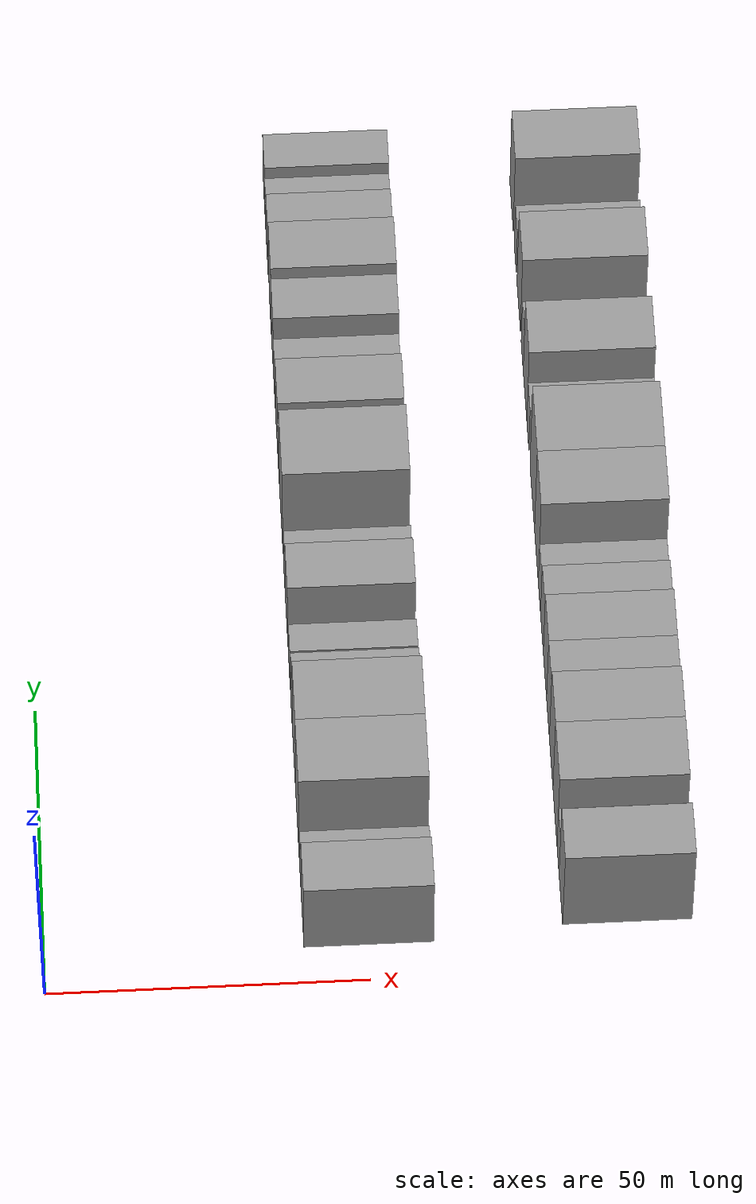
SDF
<sdf version="1.6">
 <world name="default">
  <model name="building_33">
   <static>1</static>
   <pose>50.0000 10.4126 0 0.000000 0.000000 0.000000</pose>
   <link name="link">
    <pose>0 0 9.00 0 0 0</pose>
    <collision name="collision"><geometry><box><size>20.0000 8.4670 18.0000</size></box></geometry></collision>
    <visual name="visual">
     <cast_shadows>0</cast_shadows>
     <geometry><box><size>20.0000 8.4670 18.0000</size></box></geometry>
     <material>
      <script>
       <uri>model://grey_wall/materials/scripts</uri>
       <uri>model://grey_wall/materials/textures</uri>
       <name>vrc/grey_wall</name>
      </script>
     </material>
    </visual>
   </link>
  </model>
  <model name="building_34">
   <static>1</static>
   <pose>50.0000 17.2850 0 0.000000 0.000000 0.000000</pose>
   <link name="link">
    <pose>0 0 6.00 0 0 0</pose>
    <collision name="collision"><geometry><box><size>20.0000 5.2779 12.0000</size></box></geometry></collision>
    <visual name="visual">
     <cast_shadows>0</cast_shadows>
     <geometry><box><size>20.0000 5.2779 12.0000</size></box></geometry>
     <material>
      <script>
       <uri>model://grey_wall/materials/scripts</uri>
       <uri>model://grey_wall/materials/textures</uri>
       <name>vrc/grey_wall</name>
      </script>
     </material>
    </visual>
   </link>
  </model>
  <model name="building_35">
   <static>1</static>
   <pose>50.0000 27.4227 0 0.000000 0.000000 0.000000</pose>
   <link name="link">
    <pose>0 0 12.00 0 0 0</pose>
    <collision name="collision"><geometry><box><size>20.0000 10.9975 24.0000</size></box></geometry></collision>
    <visual name="visual">
     <cast_shadows>0</cast_shadows>
     <geometry><box><size>20.0000 10.9975 24.0000</size></box></geometry>
     <material>
      <script>
       <uri>model://grey_wall/materials/scripts</uri>
       <uri>model://grey_wall/materials/textures</uri>
       <name>vrc/grey_wall</name>
      </script>
     </material>
    </visual>
   </link>
  </model>
  <model name="building_36">
   <static>1</static>
   <pose>50.0000 38.0736 0 0.000000 0.000000 0.000000</pose>
   <link name="link">
    <pose>0 0 12.00 0 0 0</pose>
    <collision name="collision"><geometry><box><size>20.0000 10.3042 24.0000</size></box></geometry></collision>
    <visual name="visual">
     <cast_shadows>0</cast_shadows>
     <geometry><box><size>20.0000 10.3042 24.0000</size></box></geometry>
     <material>
      <script>
       <uri>model://grey_wall/materials/scripts</uri>
       <uri>model://grey_wall/materials/textures</uri>
       <name>vrc/grey_wall</name>
      </script>
     </material>
    </visual>
   </link>
  </model>
  <model name="building_37">
   <static>1</static>
   <pose>50.0000 46.5629 0 0.000000 0.000000 0.000000</pose>
   <link name="link">
    <pose>0 0 7.50 0 0 0</pose>
    <collision name="collision"><geometry><box><size>20.0000 6.6744 15.0000</size></box></geometry></collision>
    <visual name="visual">
     <cast_shadows>0</cast_shadows>
     <geometry><box><size>20.0000 6.6744 15.0000</size></box></geometry>
     <material>
      <script>
       <uri>model://grey_wall/materials/scripts</uri>
       <uri>model://grey_wall/materials/textures</uri>
       <name>vrc/grey_wall</name>
      </script>
     </material>
    </visual>
   </link>
  </model>
  <model name="building_38">
   <static>1</static>
   <pose>50.0000 54.3566 0 0.000000 0.000000 0.000000</pose>
   <link name="link">
    <pose>0 0 6.00 0 0 0</pose>
    <collision name="collision"><geometry><box><size>20.0000 4.9131 12.0000</size></box></geometry></collision>
    <visual name="visual">
     <cast_shadows>0</cast_shadows>
     <geometry><box><size>20.0000 4.9131 12.0000</size></box></geometry>
     <material>
      <script>
       <uri>model://grey_wall/materials/scripts</uri>
       <uri>model://grey_wall/materials/textures</uri>
       <name>vrc/grey_wall</name>
      </script>
     </material>
    </visual>
   </link>
  </model>
  <model name="building_39">
   <static>1</static>
   <pose>50.0000 63.8687 0 0.000000 0.000000 0.000000</pose>
   <link name="link">
    <pose>0 0 9.00 0 0 0</pose>
    <collision name="collision"><geometry><box><size>20.0000 8.1110 18.0000</size></box></geometry></collision>
    <visual name="visual">
     <cast_shadows>0</cast_shadows>
     <geometry><box><size>20.0000 8.1110 18.0000</size></box></geometry>
     <material>
      <script>
       <uri>model://grey_wall/materials/scripts</uri>
       <uri>model://grey_wall/materials/textures</uri>
       <name>vrc/grey_wall</name>
      </script>
     </material>
    </visual>
   </link>
  </model>
  <model name="building_40">
   <static>1</static>
   <pose>50.0000 70.8743 0 0.000000 0.000000 0.000000</pose>
   <link name="link">
    <pose>0 0 6.00 0 0 0</pose>
    <collision name="collision"><geometry><box><size>20.0000 5.9002 12.0000</size></box></geometry></collision>
    <visual name="visual">
     <cast_shadows>0</cast_shadows>
     <geometry><box><size>20.0000 5.9002 12.0000</size></box></geometry>
     <material>
      <script>
       <uri>model://grey_wall/materials/scripts</uri>
       <uri>model://grey_wall/materials/textures</uri>
       <name>vrc/grey_wall</name>
      </script>
     </material>
    </visual>
   </link>
  </model>
  <model name="building_41">
   <static>1</static>
   <pose>50.0000 82.7837 0 0.000000 0.000000 0.000000</pose>
   <link name="link">
    <pose>0 0 12.00 0 0 0</pose>
    <collision name="collision"><geometry><box><size>20.0000 11.9186 24.0000</size></box></geometry></collision>
    <visual name="visual">
     <cast_shadows>0</cast_shadows>
     <geometry><box><size>20.0000 11.9186 24.0000</size></box></geometry>
     <material>
      <script>
       <uri>model://grey_wall/materials/scripts</uri>
       <uri>model://grey_wall/materials/textures</uri>
       <name>vrc/grey_wall</name>
      </script>
     </material>
    </visual>
   </link>
  </model>
  <model name="building_42">
   <static>1</static>
   <pose>50.0000 91.1797 0 0.000000 0.000000 0.000000</pose>
   <link name="link">
    <pose>0 0 6.00 0 0 0</pose>
    <collision name="collision"><geometry><box><size>20.0000 4.8735 12.0000</size></box></geometry></collision>
    <visual name="visual">
     <cast_shadows>0</cast_shadows>
     <geometry><box><size>20.0000 4.8735 12.0000</size></box></geometry>
     <material>
      <script>
       <uri>model://grey_wall/materials/scripts</uri>
       <uri>model://grey_wall/materials/textures</uri>
       <name>vrc/grey_wall</name>
      </script>
     </material>
    </visual>
   </link>
  </model>
  <model name="building_43">
   <static>1</static>
   <pose>50.0000 97.7854 0 0.000000 0.000000 0.000000</pose>
   <link name="link">
    <pose>0 0 9.00 0 0 0</pose>
    <collision name="collision"><geometry><box><size>20.0000 8.3379 18.0000</size></box></geometry></collision>
    <visual name="visual">
     <cast_shadows>0</cast_shadows>
     <geometry><box><size>20.0000 8.3379 18.0000</size></box></geometry>
     <material>
      <script>
       <uri>model://grey_wall/materials/scripts</uri>
       <uri>model://grey_wall/materials/textures</uri>
       <name>vrc/grey_wall</name>
      </script>
     </material>
    </visual>
   </link>
  </model>
  <model name="building_44">
   <static>1</static>
   <pose>50.0000 106.7046 0 0.000000 0.000000 0.000000</pose>
   <link name="link">
    <pose>0 0 6.00 0 0 0</pose>
    <collision name="collision"><geometry><box><size>20.0000 5.5005 12.0000</size></box></geometry></collision>
    <visual name="visual">
     <cast_shadows>0</cast_shadows>
     <geometry><box><size>20.0000 5.5005 12.0000</size></box></geometry>
     <material>
      <script>
       <uri>model://grey_wall/materials/scripts</uri>
       <uri>model://grey_wall/materials/textures</uri>
       <name>vrc/grey_wall</name>
      </script>
     </material>
    </visual>
   </link>
  </model>
  <model name="building_45">
   <static>1</static>
   <pose>50.0000 113.2035 0 0.000000 0.000000 0.000000</pose>
   <link name="link">
    <pose>0 0 9.00 0 0 0</pose>
    <collision name="collision"><geometry><box><size>20.0000 7.4973 18.0000</size></box></geometry></collision>
    <visual name="visual">
     <cast_shadows>0</cast_shadows>
     <geometry><box><size>20.0000 7.4973 18.0000</size></box></geometry>
     <material>
      <script>
       <uri>model://grey_wall/materials/scripts</uri>
       <uri>model://grey_wall/materials/textures</uri>
       <name>vrc/grey_wall</name>
      </script>
     </material>
    </visual>
   </link>
  </model>
  <model name="building_46">
   <static>1</static>
   <pose>50.0000 121.3791 0 0.000000 0.000000 0.000000</pose>
   <link name="link">
    <pose>0 0 10.50 0 0 0</pose>
    <collision name="collision"><geometry><box><size>20.0000 8.8538 21.0000</size></box></geometry></collision>
    <visual name="visual">
     <cast_shadows>0</cast_shadows>
     <geometry><box><size>20.0000 8.8538 21.0000</size></box></geometry>
     <material>
      <script>
       <uri>model://grey_wall/materials/scripts</uri>
       <uri>model://grey_wall/materials/textures</uri>
       <name>vrc/grey_wall</name>
      </script>
     </material>
    </visual>
   </link>
  </model>
  <model name="building_47">
   <static>1</static>
   <pose>50.0000 131.4339 0 0.000000 0.000000 0.000000</pose>
   <link name="link">
    <pose>0 0 7.50 0 0 0</pose>
    <collision name="collision"><geometry><box><size>20.0000 7.2557 15.0000</size></box></geometry></collision>
    <visual name="visual">
     <cast_shadows>0</cast_shadows>
     <geometry><box><size>20.0000 7.2557 15.0000</size></box></geometry>
     <material>
      <script>
       <uri>model://grey_wall/materials/scripts</uri>
       <uri>model://grey_wall/materials/textures</uri>
       <name>vrc/grey_wall</name>
      </script>
     </material>
    </visual>
   </link>
  </model>
  <model name="building_48">
   <static>1</static>
   <pose>50.0000 137.5498 0 0.000000 0.000000 0.000000</pose>
   <link name="link">
    <pose>0 0 6.00 0 0 0</pose>
    <collision name="collision"><geometry><box><size>20.0000 4.9761 12.0000</size></box></geometry></collision>
    <visual name="visual">
     <cast_shadows>0</cast_shadows>
     <geometry><box><size>20.0000 4.9761 12.0000</size></box></geometry>
     <material>
      <script>
       <uri>model://grey_wall/materials/scripts</uri>
       <uri>model://grey_wall/materials/textures</uri>
       <name>vrc/grey_wall</name>
      </script>
     </material>
    </visual>
   </link>
  </model>
  <model name="building_49">
   <static>1</static>
   <pose>50.0000 143.2701 0 0.000000 0.000000 0.000000</pose>
   <link name="link">
    <pose>0 0 7.50 0 0 0</pose>
    <collision name="collision"><geometry><box><size>20.0000 6.4646 15.0000</size></box></geometry></collision>
    <visual name="visual">
     <cast_shadows>0</cast_shadows>
     <geometry><box><size>20.0000 6.4646 15.0000</size></box></geometry>
     <material>
      <script>
       <uri>model://grey_wall/materials/scripts</uri>
       <uri>model://grey_wall/materials/textures</uri>
       <name>vrc/grey_wall</name>
      </script>
     </material>
    </visual>
   </link>
  </model>
  <model name="building_103">
   <static>1</static>
   <pose>90.0000 12.5319 0 0.000000 0.000000 0.000000</pose>
   <link name="link">
    <pose>0 0 10.50 0 0 0</pose>
    <collision name="collision"><geometry><box><size>20.0000 8.7368 21.0000</size></box></geometry></collision>
    <visual name="visual">
     <cast_shadows>0</cast_shadows>
     <geometry><box><size>20.0000 8.7368 21.0000</size></box></geometry>
     <material>
      <script>
       <uri>model://grey_wall/materials/scripts</uri>
       <uri>model://grey_wall/materials/textures</uri>
       <name>vrc/grey_wall</name>
      </script>
     </material>
    </visual>
   </link>
  </model>
  <model name="building_104">
   <static>1</static>
   <pose>90.0000 19.4082 0 0.000000 0.000000 0.000000</pose>
   <link name="link">
    <pose>0 0 6.00 0 0 0</pose>
    <collision name="collision"><geometry><box><size>20.0000 5.0158 12.0000</size></box></geometry></collision>
    <visual name="visual">
     <cast_shadows>0</cast_shadows>
     <geometry><box><size>20.0000 5.0158 12.0000</size></box></geometry>
     <material>
      <script>
       <uri>model://grey_wall/materials/scripts</uri>
       <uri>model://grey_wall/materials/textures</uri>
       <name>vrc/grey_wall</name>
      </script>
     </material>
    </visual>
   </link>
  </model>
  <model name="building_105">
   <static>1</static>
   <pose>90.0000 27.0254 0 0.000000 0.000000 0.000000</pose>
   <link name="link">
    <pose>0 0 10.50 0 0 0</pose>
    <collision name="collision"><geometry><box><size>20.0000 10.2185 21.0000</size></box></geometry></collision>
    <visual name="visual">
     <cast_shadows>0</cast_shadows>
     <geometry><box><size>20.0000 10.2185 21.0000</size></box></geometry>
     <material>
      <script>
       <uri>model://grey_wall/materials/scripts</uri>
       <uri>model://grey_wall/materials/textures</uri>
       <name>vrc/grey_wall</name>
      </script>
     </material>
    </visual>
   </link>
  </model>
  <model name="building_106">
   <static>1</static>
   <pose>90.0000 36.6132 0 0.000000 0.000000 0.000000</pose>
   <link name="link">
    <pose>0 0 10.50 0 0 0</pose>
    <collision name="collision"><geometry><box><size>20.0000 8.9573 21.0000</size></box></geometry></collision>
    <visual name="visual">
     <cast_shadows>0</cast_shadows>
     <geometry><box><size>20.0000 8.9573 21.0000</size></box></geometry>
     <material>
      <script>
       <uri>model://grey_wall/materials/scripts</uri>
       <uri>model://grey_wall/materials/textures</uri>
       <name>vrc/grey_wall</name>
      </script>
     </material>
    </visual>
   </link>
  </model>
  <model name="building_107">
   <static>1</static>
   <pose>90.0000 44.7175 0 0.000000 0.000000 0.000000</pose>
   <link name="link">
    <pose>0 0 9.00 0 0 0</pose>
    <collision name="collision"><geometry><box><size>20.0000 7.2513 18.0000</size></box></geometry></collision>
    <visual name="visual">
     <cast_shadows>0</cast_shadows>
     <geometry><box><size>20.0000 7.2513 18.0000</size></box></geometry>
     <material>
      <script>
       <uri>model://grey_wall/materials/scripts</uri>
       <uri>model://grey_wall/materials/textures</uri>
       <name>vrc/grey_wall</name>
      </script>
     </material>
    </visual>
   </link>
  </model>
  <model name="building_108">
   <static>1</static>
   <pose>90.0000 52.5017 0 0.000000 0.000000 0.000000</pose>
   <link name="link">
    <pose>0 0 9.00 0 0 0</pose>
    <collision name="collision"><geometry><box><size>20.0000 8.3170 18.0000</size></box></geometry></collision>
    <visual name="visual">
     <cast_shadows>0</cast_shadows>
     <geometry><box><size>20.0000 8.3170 18.0000</size></box></geometry>
     <material>
      <script>
       <uri>model://grey_wall/materials/scripts</uri>
       <uri>model://grey_wall/materials/textures</uri>
       <name>vrc/grey_wall</name>
      </script>
     </material>
    </visual>
   </link>
  </model>
  <model name="building_109">
   <static>1</static>
   <pose>90.0000 60.1761 0 0.000000 0.000000 0.000000</pose>
   <link name="link">
    <pose>0 0 7.50 0 0 0</pose>
    <collision name="collision"><geometry><box><size>20.0000 7.0318 15.0000</size></box></geometry></collision>
    <visual name="visual">
     <cast_shadows>0</cast_shadows>
     <geometry><box><size>20.0000 7.0318 15.0000</size></box></geometry>
     <material>
      <script>
       <uri>model://grey_wall/materials/scripts</uri>
       <uri>model://grey_wall/materials/textures</uri>
       <name>vrc/grey_wall</name>
      </script>
     </material>
    </visual>
   </link>
  </model>
  <model name="building_110">
   <static>1</static>
   <pose>90.0000 66.5430 0 0.000000 0.000000 0.000000</pose>
   <link name="link">
    <pose>0 0 6.00 0 0 0</pose>
    <collision name="collision"><geometry><box><size>20.0000 5.7021 12.0000</size></box></geometry></collision>
    <visual name="visual">
     <cast_shadows>0</cast_shadows>
     <geometry><box><size>20.0000 5.7021 12.0000</size></box></geometry>
     <material>
      <script>
       <uri>model://grey_wall/materials/scripts</uri>
       <uri>model://grey_wall/materials/textures</uri>
       <name>vrc/grey_wall</name>
      </script>
     </material>
    </visual>
   </link>
  </model>
  <model name="building_111">
   <static>1</static>
   <pose>90.0000 74.2761 0 0.000000 0.000000 0.000000</pose>
   <link name="link">
    <pose>0 0 12.00 0 0 0</pose>
    <collision name="collision"><geometry><box><size>20.0000 9.7640 24.0000</size></box></geometry></collision>
    <visual name="visual">
     <cast_shadows>0</cast_shadows>
     <geometry><box><size>20.0000 9.7640 24.0000</size></box></geometry>
     <material>
      <script>
       <uri>model://grey_wall/materials/scripts</uri>
       <uri>model://grey_wall/materials/textures</uri>
       <name>vrc/grey_wall</name>
      </script>
     </material>
    </visual>
   </link>
  </model>
  <model name="building_112">
   <static>1</static>
   <pose>90.0000 85.1190 0 0.000000 0.000000 0.000000</pose>
   <link name="link">
    <pose>0 0 12.00 0 0 0</pose>
    <collision name="collision"><geometry><box><size>20.0000 11.9219 24.0000</size></box></geometry></collision>
    <visual name="visual">
     <cast_shadows>0</cast_shadows>
     <geometry><box><size>20.0000 11.9219 24.0000</size></box></geometry>
     <material>
      <script>
       <uri>model://grey_wall/materials/scripts</uri>
       <uri>model://grey_wall/materials/textures</uri>
       <name>vrc/grey_wall</name>
      </script>
     </material>
    </visual>
   </link>
  </model>
  <model name="building_113">
   <static>1</static>
   <pose>90.0000 96.6389 0 0.000000 0.000000 0.000000</pose>
   <link name="link">
    <pose>0 0 6.00 0 0 0</pose>
    <collision name="collision"><geometry><box><size>20.0000 5.1179 12.0000</size></box></geometry></collision>
    <visual name="visual">
     <cast_shadows>0</cast_shadows>
     <geometry><box><size>20.0000 5.1179 12.0000</size></box></geometry>
     <material>
      <script>
       <uri>model://grey_wall/materials/scripts</uri>
       <uri>model://grey_wall/materials/textures</uri>
       <name>vrc/grey_wall</name>
      </script>
     </material>
    </visual>
   </link>
  </model>
  <model name="building_114">
   <static>1</static>
   <pose>90.0000 104.0124 0 0.000000 0.000000 0.000000</pose>
   <link name="link">
    <pose>0 0 10.50 0 0 0</pose>
    <collision name="collision"><geometry><box><size>20.0000 9.6290 21.0000</size></box></geometry></collision>
    <visual name="visual">
     <cast_shadows>0</cast_shadows>
     <geometry><box><size>20.0000 9.6290 21.0000</size></box></geometry>
     <material>
      <script>
       <uri>model://grey_wall/materials/scripts</uri>
       <uri>model://grey_wall/materials/textures</uri>
       <name>vrc/grey_wall</name>
      </script>
     </material>
    </visual>
   </link>
  </model>
  <model name="building_115">
   <static>1</static>
   <pose>90.0000 111.6711 0 0.000000 0.000000 0.000000</pose>
   <link name="link">
    <pose>0 0 6.00 0 0 0</pose>
    <collision name="collision"><geometry><box><size>20.0000 5.6885 12.0000</size></box></geometry></collision>
    <visual name="visual">
     <cast_shadows>0</cast_shadows>
     <geometry><box><size>20.0000 5.6885 12.0000</size></box></geometry>
     <material>
      <script>
       <uri>model://grey_wall/materials/scripts</uri>
       <uri>model://grey_wall/materials/textures</uri>
       <name>vrc/grey_wall</name>
      </script>
     </material>
    </visual>
   </link>
  </model>
  <model name="building_116">
   <static>1</static>
   <pose>90.0000 121.1224 0 0.000000 0.000000 0.000000</pose>
   <link name="link">
    <pose>0 0 10.50 0 0 0</pose>
    <collision name="collision"><geometry><box><size>20.0000 9.2140 21.0000</size></box></geometry></collision>
    <visual name="visual">
     <cast_shadows>0</cast_shadows>
     <geometry><box><size>20.0000 9.2140 21.0000</size></box></geometry>
     <material>
      <script>
       <uri>model://grey_wall/materials/scripts</uri>
       <uri>model://grey_wall/materials/textures</uri>
       <name>vrc/grey_wall</name>
      </script>
     </material>
    </visual>
   </link>
  </model>
  <model name="building_117">
   <static>1</static>
   <pose>90.0000 130.2792 0 0.000000 0.000000 0.000000</pose>
   <link name="link">
    <pose>0 0 6.00 0 0 0</pose>
    <collision name="collision"><geometry><box><size>20.0000 5.0997 12.0000</size></box></geometry></collision>
    <visual name="visual">
     <cast_shadows>0</cast_shadows>
     <geometry><box><size>20.0000 5.0997 12.0000</size></box></geometry>
     <material>
      <script>
       <uri>model://grey_wall/materials/scripts</uri>
       <uri>model://grey_wall/materials/textures</uri>
       <name>vrc/grey_wall</name>
      </script>
     </material>
    </visual>
   </link>
  </model>
  <model name="building_118">
   <static>1</static>
   <pose>90.0000 140.4212 0 0.000000 0.000000 0.000000</pose>
   <link name="link">
    <pose>0 0 10.50 0 0 0</pose>
    <collision name="collision"><geometry><box><size>20.0000 9.1842 21.0000</size></box></geometry></collision>
    <visual name="visual">
     <cast_shadows>0</cast_shadows>
     <geometry><box><size>20.0000 9.1842 21.0000</size></box></geometry>
     <material>
      <script>
       <uri>model://grey_wall/materials/scripts</uri>
       <uri>model://grey_wall/materials/textures</uri>
       <name>vrc/grey_wall</name>
      </script>
     </material>
    </visual>
   </link>
  </model>
 </world>
</sdf>
